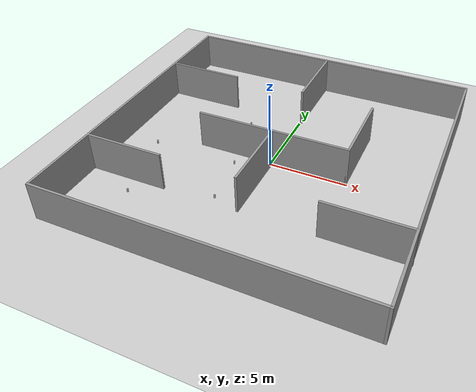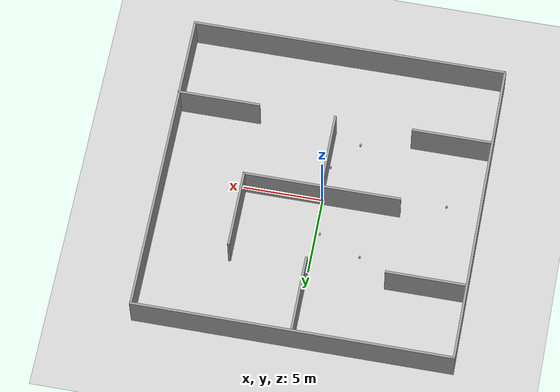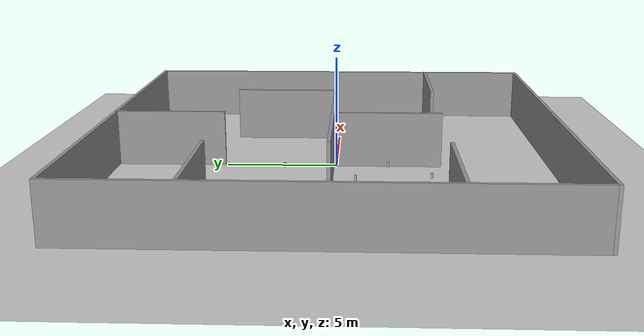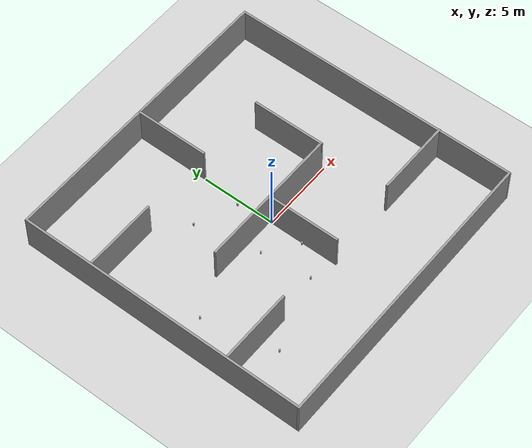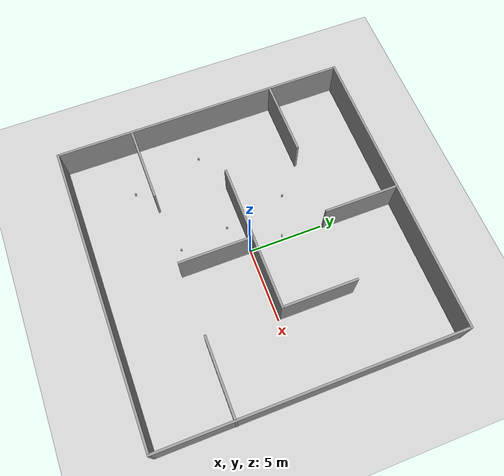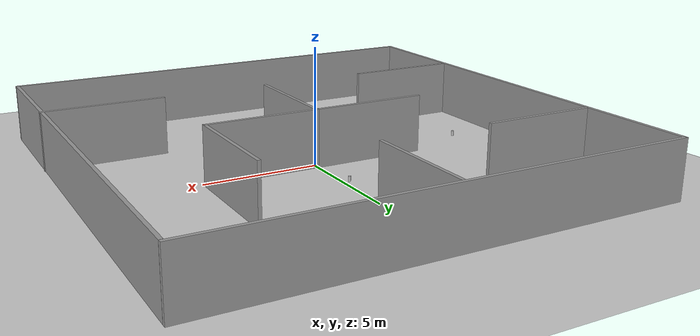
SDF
<sdf version="1.6">
 <world name="default">
  <light name="sun" type="directional">
   <pose>0 0 10 0 -0 0</pose>
   <diffuse>0.8 0.8 0.8 1</diffuse>
   <specular>0.1 0.1 0.1 1</specular>
   <attenuation>
    <range>1000</range>
    <constant>0.9</constant>
    <linear>0.01</linear>
    <quadratic>0.001</quadratic>
   </attenuation>
   <direction>-0.5 0.5 -1</direction>
  </light>
  <model name="ground_plane">
   <static>1</static>
   <link name="link">
    <collision name="collision">
     <geometry><plane><normal>0 0 1</normal><size>100 100</size></plane></geometry>
     <surface><friction><ode><mu>100</mu><mu2>50</mu2></ode></friction></surface>
    </collision>
    <visual name="visual">
     <cast_shadows>0</cast_shadows>
     <geometry><plane><normal>0 0 1</normal><size>100 100</size></plane></geometry>
     <material>
      <script><uri>file://media/materials/scripts/gazebo.material</uri><name>Gazebo/Grey</name></script>
     </material>
    </visual>
   </link>
  </model>
  <physics name="default_physics" default="0" type="ode">
   <real_time_update_rate>1000</real_time_update_rate>
   <max_step_size>0.001</max_step_size>
   <real_time_factor>1</real_time_factor>
   <ode>
    <solver>
     <type>quick</type>
     <iters>150</iters>
     <precon_iters>0</precon_iters>
     <sor>1.4</sor>
     <use_dynamic_moi_rescaling>1</use_dynamic_moi_rescaling>
    </solver>
    <constraints>
     <cfm>1e-05</cfm>
     <erp>0.2</erp>
     <contact_max_correcting_vel>2000</contact_max_correcting_vel>
     <contact_surface_layer>0.01</contact_surface_layer>
    </constraints>
   </ode>
  </physics>
  <model name="maze-1">
   <pose>0.064205 0.177634 0 0 -0 0</pose>
   <link name="Wall_14">
    <collision name="Wall_14_Collision">
     <geometry><box><size>19.7163 0.15 2.5</size></box></geometry>
     <pose>0 0 1.25 0 -0 0</pose>
    </collision>
    <visual name="Wall_14_Visual">
     <pose>0 0 1.25 0 -0 0</pose>
     <geometry><box><size>19.7163 0.15 2.5</size></box></geometry>
     <material>
      <script><uri>file://media/materials/scripts/gazebo.material</uri><name>Gazebo/Grey</name></script>
      <ambient>1 1 1 1</ambient>
     </material>
    </visual>
    <pose>9.9125 -0.080422 0 0 0 -1.5708</pose>
   </link>
   <link name="Wall_19">
    <collision name="Wall_19_Collision">
     <geometry><box><size>20 0.15 2.5</size></box></geometry>
     <pose>0 0 1.25 0 -0 0</pose>
    </collision>
    <visual name="Wall_19_Visual">
     <pose>0 0 1.25 0 -0 0</pose>
     <geometry><box><size>20 0.15 2.5</size></box></geometry>
     <material>
      <script><uri>file://media/materials/scripts/gazebo.material</uri><name>Gazebo/Grey</name></script>
      <ambient>1 1 1 1</ambient>
     </material>
    </visual>
    <pose>-0.012499 -9.86342 0 0 -0 3.14159</pose>
   </link>
   <link name="Wall_20">
    <collision name="Wall_20_Collision">
     <geometry><box><size>19.8766 0.15 2.5</size></box></geometry>
     <pose>0 0 1.25 0 -0 0</pose>
    </collision>
    <visual name="Wall_20_Visual">
     <pose>0 0 1.25 0 -0 0</pose>
     <geometry><box><size>19.8766 0.15 2.5</size></box></geometry>
     <material>
      <script><uri>file://media/materials/scripts/gazebo.material</uri><name>Gazebo/Grey</name></script>
      <ambient>1 1 1 1</ambient>
     </material>
    </visual>
    <pose>-9.9375 7.8e-05 0 0 -0 1.5708</pose>
   </link>
   <link name="Wall_21">
    <collision name="Wall_21_Collision">
     <geometry><box><size>20 0.15 2.5</size></box></geometry>
     <pose>0 0 1.25 0 -0 0</pose>
    </collision>
    <visual name="Wall_21_Visual">
     <pose>0 0 1.25 0 -0 0</pose>
     <geometry><box><size>20 0.15 2.5</size></box></geometry>
     <material>
      <script><uri>file://media/materials/scripts/gazebo.material</uri><name>Gazebo/Grey</name></script>
      <ambient>1 1 1 1</ambient>
     </material>
    </visual>
    <pose>-0.012499 9.86358 0 0 -0 0</pose>
   </link>
   <link name="Wall_28">
    <collision name="Wall_28_Collision">
     <geometry><box><size>5 0.15 2.5</size></box></geometry>
     <pose>0 0 1.25 0 -0 0</pose>
    </collision>
    <visual name="Wall_28_Visual">
     <pose>0 0 1.25 0 -0 0</pose>
     <geometry><box><size>5 0.15 2.5</size></box></geometry>
     <material>
      <script><uri>file://media/materials/scripts/gazebo.material</uri><name>Gazebo/Grey</name></script>
      <ambient>1 1 1 1</ambient>
     </material>
    </visual>
    <pose>-0.012499 -2.41142 0 0 0 -1.5708</pose>
   </link>
   <link name="Wall_45">
    <collision name="Wall_45_Collision">
     <geometry><box><size>5 0.15 2.5</size></box></geometry>
     <pose>0 0 1.25 0 -0 0</pose>
    </collision>
    <visual name="Wall_45_Visual">
     <pose>0 0 1.25 0 -0 0</pose>
     <geometry><box><size>5 0.15 2.5</size></box></geometry>
     <material>
      <script><uri>file://media/materials/scripts/gazebo.material</uri><name>Gazebo/Grey</name></script>
      <ambient>1 1 1 1</ambient>
     </material>
    </visual>
    <pose>2.4125 0.013578 0 0 -0 0</pose>
   </link>
   <link name="Wall_46">
    <collision name="Wall_46_Collision">
     <geometry><box><size>5 0.15 2.5</size></box></geometry>
     <pose>0 0 1.25 0 -0 0</pose>
    </collision>
    <visual name="Wall_46_Visual">
     <pose>0 0 1.25 0 -0 0</pose>
     <geometry><box><size>5 0.15 2.5</size></box></geometry>
     <material>
      <script><uri>file://media/materials/scripts/gazebo.material</uri><name>Gazebo/Grey</name></script>
      <ambient>1 1 1 1</ambient>
     </material>
    </visual>
    <pose>4.8375 2.43858 0 0 -0 1.5708</pose>
   </link>
   <link name="Wall_61">
    <collision name="Wall_61_Collision">
     <geometry><box><size>5 0.15 2.5</size></box></geometry>
     <pose>0 0 1.25 0 -0 0</pose>
    </collision>
    <visual name="Wall_61_Visual">
     <pose>0 0 1.25 0 -0 0</pose>
     <geometry><box><size>5 0.15 2.5</size></box></geometry>
     <material>
      <script><uri>file://media/materials/scripts/gazebo.material</uri><name>Gazebo/Grey</name></script>
      <ambient>1 1 1 1</ambient>
     </material>
    </visual>
    <pose>-7.3875 5.01358 0 0 -0 0</pose>
   </link>
   <link name="Wall_63">
    <collision name="Wall_63_Collision">
     <geometry><box><size>5 0.15 2.5</size></box></geometry>
     <pose>0 0 1.25 0 -0 0</pose>
    </collision>
    <visual name="Wall_63_Visual">
     <pose>0 0 1.25 0 -0 0</pose>
     <geometry><box><size>5 0.15 2.5</size></box></geometry>
     <material>
      <script><uri>file://media/materials/scripts/gazebo.material</uri><name>Gazebo/Grey</name></script>
      <ambient>1 1 1 1</ambient>
     </material>
    </visual>
    <pose>0.001151 7.40536 0 0 -0 1.5708</pose>
   </link>
   <link name="Wall_66">
    <collision name="Wall_66_Collision">
     <geometry><box><size>5.25 0.15 2.5</size></box></geometry>
     <pose>0 0 1.25 0 -0 0</pose>
    </collision>
    <visual name="Wall_66_Visual">
     <pose>0 0 1.25 0 -0 0</pose>
     <geometry><box><size>5.25 0.15 2.5</size></box></geometry>
     <material>
      <script><uri>file://media/materials/scripts/gazebo.material</uri><name>Gazebo/Grey</name></script>
      <ambient>1 1 1 1</ambient>
     </material>
    </visual>
    <pose>7.3875 -4.83642 0 0 -0 0</pose>
   </link>
   <link name="Wall_68">
    <collision name="Wall_68_Collision">
     <geometry><box><size>5.075 0.15 2.5</size></box></geometry>
     <pose>0 0 1.25 0 -0 0</pose>
    </collision>
    <visual name="Wall_68_Visual">
     <pose>0 0 1.25 0 -0 0</pose>
     <geometry><box><size>5.075 0.15 2.5</size></box></geometry>
     <material>
      <script><uri>file://media/materials/scripts/gazebo.material</uri><name>Gazebo/Grey</name></script>
      <ambient>1 1 1 1</ambient>
     </material>
    </visual>
    <pose>-2.475 0.013578 0 0 -0 3.14159</pose>
   </link>
   <link name="Wall_71">
    <collision name="Wall_71_Collision">
     <geometry><box><size>5 0.15 2.5</size></box></geometry>
     <pose>0 0 1.25 0 -0 0</pose>
    </collision>
    <visual name="Wall_71_Visual">
     <pose>0 0 1.25 0 -0 0</pose>
     <geometry><box><size>5 0.15 2.5</size></box></geometry>
     <material>
      <script><uri>file://media/materials/scripts/gazebo.material</uri><name>Gazebo/Grey</name></script>
      <ambient>1 1 1 1</ambient>
     </material>
    </visual>
    <pose>-7.3625 -4.83642 0 0 -0 3.14159</pose>
   </link>
   <static>1</static>
  </model>
  <scene><ambient>0.4 0.4 0.4 1</ambient><background>0.7 0.7 0.7 1</background><shadows>0</shadows></scene>
  <gravity>0 0 -9.8</gravity>
  <magnetic_field>6e-06 2.3e-05 -4.2e-05</magnetic_field>
  <atmosphere type="adiabatic"/>
  <spherical_coordinates>
   <surface_model>EARTH_WGS84</surface_model>
   <latitude_deg>0</latitude_deg>
   <longitude_deg>0</longitude_deg>
   <elevation>0</elevation>
   <heading_deg>0</heading_deg>
  </spherical_coordinates>
  <model name="beer">
   <link name="link">
    <pose>0 0 0.115 0 -0 0</pose>
    <inertial>
     <mass>0.39</mass>
     <inertia><ixx>0.00058</ixx><ixy>0</ixy><ixz>0</ixz><iyy>0.00058</iyy><iyz>0</iyz><izz>0.00019</izz></inertia>
    </inertial>
    <collision name="collision">
     <geometry><cylinder><radius>0.055</radius><length>0.23</length></cylinder></geometry>
    </collision>
    <visual name="visual">
     <geometry><cylinder><radius>0.055</radius><length>0.23</length></cylinder></geometry>
     <material>
      <script>
       <uri>model://beer/materials/scripts</uri>
       <uri>model://beer/materials/textures</uri>
       <name>Beer/Diffuse</name>
      </script>
     </material>
    </visual>
   </link>
   <pose>-6.60623 -5.79874 -8e-06 -4e-06 1e-06 0</pose>
  </model>
  <model name="beer_0">
   <link name="link">
    <pose>0 0 0.115 0 -0 0</pose>
    <inertial>
     <mass>0.39</mass>
     <inertia><ixx>0.00058</ixx><ixy>0</ixy><ixz>0</ixz><iyy>0.00058</iyy><iyz>0</iyz><izz>0.00019</izz></inertia>
    </inertial>
    <collision name="collision">
     <geometry><cylinder><radius>0.055</radius><length>0.23</length></cylinder></geometry>
    </collision>
    <visual name="visual">
     <geometry><cylinder><radius>0.055</radius><length>0.23</length></cylinder></geometry>
     <material>
      <script>
       <uri>model://beer/materials/scripts</uri>
       <uri>model://beer/materials/textures</uri>
       <name>Beer/Diffuse</name>
      </script>
     </material>
    </visual>
   </link>
   <pose>-2.08165 -0.849551 -2e-06 4e-06 -1e-06 0</pose>
  </model>
  <model name="beer_1">
   <link name="link">
    <pose>0 0 0.115 0 -0 0</pose>
    <inertial>
     <mass>0.39</mass>
     <inertia><ixx>0.00058</ixx><ixy>0</ixy><ixz>0</ixz><iyy>0.00058</iyy><iyz>0</iyz><izz>0.00019</izz></inertia>
    </inertial>
    <collision name="collision">
     <geometry><cylinder><radius>0.055</radius><length>0.23</length></cylinder></geometry>
    </collision>
    <visual name="visual">
     <geometry><cylinder><radius>0.055</radius><length>0.23</length></cylinder></geometry>
     <material>
      <script>
       <uri>model://beer/materials/scripts</uri>
       <uri>model://beer/materials/textures</uri>
       <name>Beer/Diffuse</name>
      </script>
     </material>
    </visual>
   </link>
   <pose>-7.69785 -0.911465 -8e-06 -4e-06 2e-06 0</pose>
  </model>
  <model name="beer_2">
   <link name="link">
    <pose>0 0 0.115 0 -0 0</pose>
    <inertial>
     <mass>0.39</mass>
     <inertia><ixx>0.00058</ixx><ixy>0</ixy><ixz>0</ixz><iyy>0.00058</iyy><iyz>0</iyz><izz>0.00019</izz></inertia>
    </inertial>
    <collision name="collision">
     <geometry><cylinder><radius>0.055</radius><length>0.23</length></cylinder></geometry>
    </collision>
    <visual name="visual">
     <geometry><cylinder><radius>0.055</radius><length>0.23</length></cylinder></geometry>
     <material>
      <script>
       <uri>model://beer/materials/scripts</uri>
       <uri>model://beer/materials/textures</uri>
       <name>Beer/Diffuse</name>
      </script>
     </material>
    </visual>
   </link>
   <pose>-2.97464 3.45526 -2e-06 4e-06 -2e-06 0</pose>
  </model>
  <model name="beer_3">
   <link name="link">
    <pose>0 0 0.115 0 -0 0</pose>
    <inertial>
     <mass>0.39</mass>
     <inertia><ixx>0.00058</ixx><ixy>0</ixy><ixz>0</ixz><iyy>0.00058</iyy><iyz>0</iyz><izz>0.00019</izz></inertia>
    </inertial>
    <collision name="collision">
     <geometry><cylinder><radius>0.055</radius><length>0.23</length></cylinder></geometry>
    </collision>
    <visual name="visual">
     <geometry><cylinder><radius>0.055</radius><length>0.23</length></cylinder></geometry>
     <material>
      <script>
       <uri>model://beer/materials/scripts</uri>
       <uri>model://beer/materials/textures</uri>
       <name>Beer/Diffuse</name>
      </script>
     </material>
    </visual>
   </link>
   <pose>-0.264754 2.34191 -8e-06 -4e-06 2e-06 0</pose>
  </model>
  <model name="beer_4">
   <link name="link">
    <pose>0 0 0.115 0 -0 0</pose>
    <inertial>
     <mass>0.39</mass>
     <inertia><ixx>0.00058</ixx><ixy>0</ixy><ixz>0</ixz><iyy>0.00058</iyy><iyz>0</iyz><izz>0.00019</izz></inertia>
    </inertial>
    <collision name="collision">
     <geometry><cylinder><radius>0.055</radius><length>0.23</length></cylinder></geometry>
    </collision>
    <visual name="visual">
     <geometry><cylinder><radius>0.055</radius><length>0.23</length></cylinder></geometry>
     <material>
      <script>
       <uri>model://beer/materials/scripts</uri>
       <uri>model://beer/materials/textures</uri>
       <name>Beer/Diffuse</name>
      </script>
     </material>
    </visual>
   </link>
   <pose>-0.094134 -2.32276 -2e-06 4e-06 -3e-06 0</pose>
  </model>
  <model name="beer_5">
   <link name="link">
    <pose>0 0 0.115 0 -0 0</pose>
    <inertial>
     <mass>0.39</mass>
     <inertia><ixx>0.00058</ixx><ixy>0</ixy><ixz>0</ixz><iyy>0.00058</iyy><iyz>0</iyz><izz>0.00019</izz></inertia>
    </inertial>
    <collision name="collision">
     <geometry><cylinder><radius>0.055</radius><length>0.23</length></cylinder></geometry>
    </collision>
    <visual name="visual">
     <geometry><cylinder><radius>0.055</radius><length>0.23</length></cylinder></geometry>
     <material>
      <script>
       <uri>model://beer/materials/scripts</uri>
       <uri>model://beer/materials/textures</uri>
       <name>Beer/Diffuse</name>
      </script>
     </material>
    </visual>
   </link>
   <pose>-1.66742 -4.18221 -8e-06 -4e-06 3e-06 0</pose>
  </model>
 </world>
</sdf>
